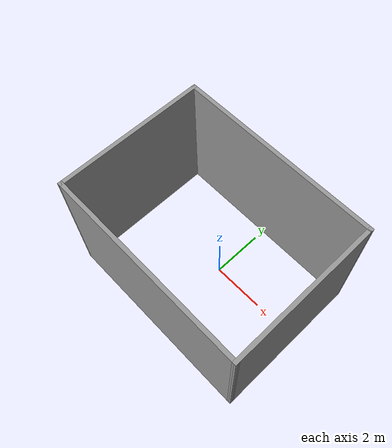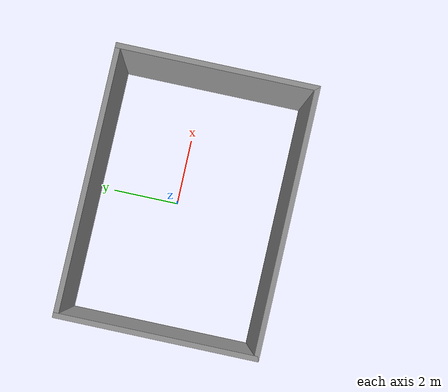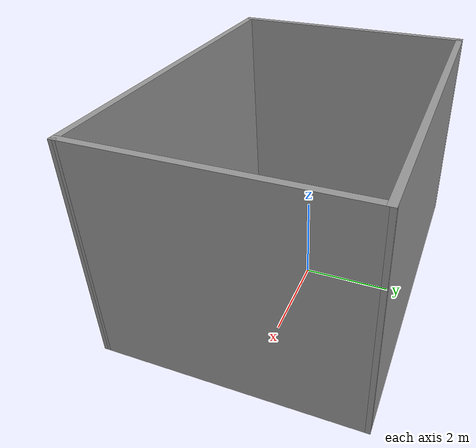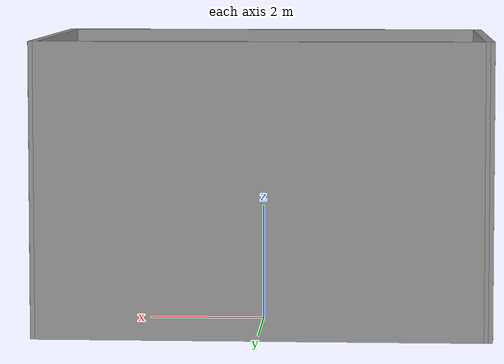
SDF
<?xml version='1.0'?>
<sdf version='1.7'>
  <model name='simple_room'>
    <pose>-0.0625 -0.310997 0 0 -0 0</pose>
    <link name='Wall_2'>
      <collision name='Wall_2_Collision'>
        <geometry>
          <box>
            <size>7.73542 0.15 5</size>
          </box>
        </geometry>
        <pose>0 0 2.5 0 -0 0</pose>
      </collision>
      <visual name='Wall_2_Visual'>
        <pose>0 0 2.5 0 -0 0</pose>
        <geometry>
          <box>
            <size>7.73542 0.15 5</size>
          </box>
        </geometry>
        <material>
          <script>
            <uri>file://media/materials/scripts/gazebo.material</uri>
            <name>Gazebo/Grey</name>
          </script>
          <ambient>1 1 1 1</ambient>
        </material>
        <meta>
          <layer>0</layer>
        </meta>
      </visual>
      <pose>0 -2.8 0 0 -0 -0.01292</pose>
    </link>
    <link name='Wall_3'>
      <collision name='Wall_3_Collision'>
        <geometry>
          <box>
            <size>5.75 0.15 5</size>
          </box>
        </geometry>
        <pose>0 0 2.5 0 -0 0</pose>
      </collision>
      <visual name='Wall_3_Visual'>
        <pose>0 0 2.5 0 -0 0</pose>
        <geometry>
          <box>
            <size>5.75 0.15 5</size>
          </box>
        </geometry>
        <material>
          <script>
            <uri>file://media/materials/scripts/gazebo.material</uri>
            <name>Gazebo/Grey</name>
          </script>
          <ambient>1 1 1 1</ambient>
        </material>
        <meta>
          <layer>0</layer>
        </meta>
      </visual>
      <pose>3.7925 -0.049003 0 0 -0 1.5708</pose>
    </link>
    <link name='Wall_4'>
      <collision name='Wall_4_Collision'>
        <geometry>
          <box>
            <size>7.73632 0.15 5</size>
          </box>
        </geometry>
        <pose>0 0 2.5 0 -0 0</pose>
      </collision>
      <visual name='Wall_4_Visual'>
        <pose>0 0 2.5 0 -0 0</pose>
        <geometry>
          <box>
            <size>7.73632 0.15 5</size>
          </box>
        </geometry>
        <material>
          <script>
            <uri>file://media/materials/scripts/gazebo.material</uri>
            <name>Gazebo/Grey</name>
          </script>
          <ambient>1 1 1 1</ambient>
        </material>
        <meta>
          <layer>0</layer>
        </meta>
      </visual>
      <pose>0 2.8 0 0 -0 3.12867</pose>
    </link>
    <link name='Wall_5'>
      <collision name='Wall_5_Collision'>
        <geometry>
          <box>
            <size>5.75 0.15 5</size>
          </box>
        </geometry>
        <pose>0 0 2.5 0 -0 0</pose>
      </collision>
      <visual name='Wall_5_Visual'>
        <pose>0 0 2.5 0 -0 0</pose>
        <geometry>
          <box>
            <size>5.75 0.15 5</size>
          </box>
        </geometry>
        <material>
          <script>
            <uri>file://media/materials/scripts/gazebo.material</uri>
            <name>Gazebo/Grey</name>
          </script>
          <ambient>1 1 1 1</ambient>
        </material>
        <meta>
          <layer>0</layer>
        </meta>
      </visual>
      <pose>-3.7925 0.048997 0 0 -0 -1.5708</pose>
    </link>
    <static>1</static>
  </model>
</sdf>
